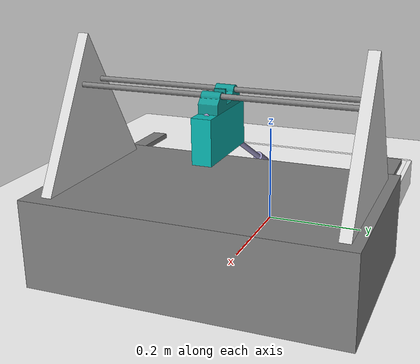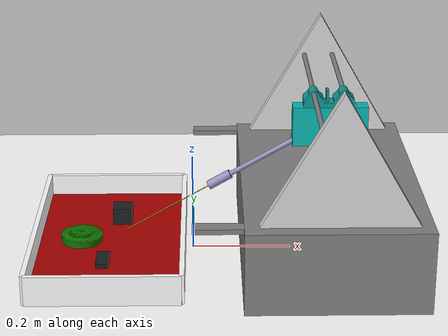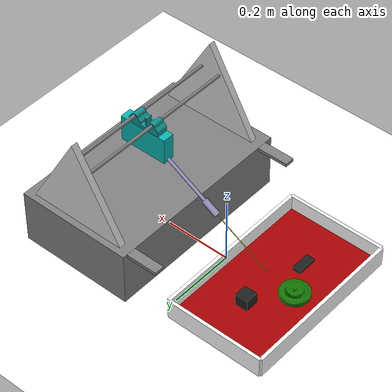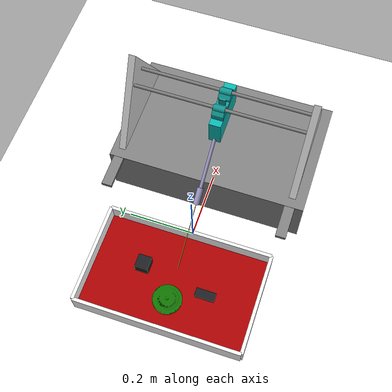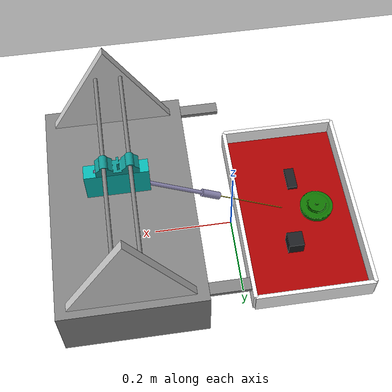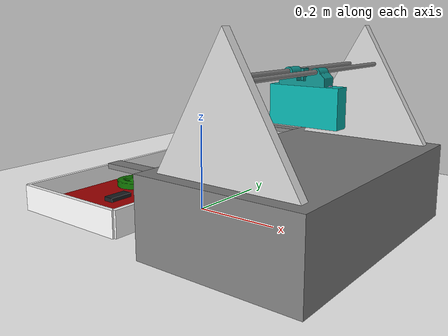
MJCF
<mujoco>
	<asset>
    	<mesh file="Support1.stl"/>
		<mesh file="Support2.stl"/>
		<mesh file="Stand.stl"/>
		<mesh file="Probe_new.stl"/>
		<mesh file="Housing_new.stl"/>
		<mesh file="Support_rod1.stl"/>
		<mesh file="Support_rod2.stl"/>
		<mesh file="Probe_holder1.stl"/>
		<mesh file="Probe_holder2.stl"/>
		<mesh file="Mine.stl"/>
		<mesh file="Probe_main_new.stl"/>
		<texture type="skybox" builtin="gradient" rgb1="1 1 1" rgb2=".6 .8 1" width="256" height="256"/>
        <texture name="texplane" type="2d" builtin="checker" rgb1=".2 .3 .4" rgb2=".1 0.15 0.2"
            width="100" height="100"/>
        <material name='MatPlane' reflectance='0.5' texture="texplane" texrepeat="1 1" texuniform="true"/>
	</asset>

	<option gravity= "0 0 -9.8"/>
	<worldbody>

        <light diffuse="0.8 0.8 0.8" pos="0 0 4" dir="0 0 -1"/>
		<geom type="plane" size="1 1 0.1" rgba="1 1 1 1"/>

		<body pos="0 0 0.25">
			<geom type="mesh" size="0.01" mesh="Stand"/>
			<body pos="0.1 -0.25 -0.09">
				<geom type="box" pos= "0 -0.01 0" size="0.10 0.015 0.005"/>
			</body>
			<body pos="0.1 0.25 -0.09">
				<geom type="box" pos= "0 0.01 0" size="0.10 0.015 0.005"/>
				<body pos="-0.1 -0.25 0.09">
					<joint name="test_bed_slider" pos="0.15 -0.26 -0.05" type="slide" axis="-1 0 0" damping="1" limited="true" range="0 0.13"/>
			<body pos="0 0 0">
				<geom type="mesh"  mesh="Support1" rgba="0.839 0.839 0.839 1"/>
				<body pos="0 0 0">
					<geom type="mesh" mesh="Support_rod1"/>
				</body>
			</body>
			<body pos="0 0 0">
				<geom type="mesh" mesh="Support2" rgba="0.839 0.839 0.839 1"/>
				<body pos="0 0 0">
					<geom type="mesh" mesh="Support_rod2"/>
				<body pos="0 0 0" euler="0 0 0">
					<inertial pos="0 0 0" mass="10"/>
					<joint name="axis_movement_j" pos="0.24 0 0.086" type="slide" axis="0 -1 0" damping="1" limited="true" range="-0.15 0.15"/>
					<geom type="mesh" mesh="Probe_holder1" rgba="0.055 0.58 0.565 1"/>
						<body pos="0 0 0">
						<geom type="mesh" mesh="Probe_holder2" rgba="0.031 0.71 0.69 1"/>
						<body pos="0 0 0">
							<geom type="mesh" mesh="Probe_main_new" rgba="0.588 0.569 0.741 1"/>
							<body pos="0 0 0">
								<geom type="mesh" mesh="Housing_new" rgba="0.588 0.569 0.741 1"/>
							</body>
							<body pos="-0.005 -0.0014 -0.1333" euler="0 60 0">
								<joint name="LinearActuator_j" damping="10" stiffness="100" pos="0 0 0" type="slide" axis="0 0 -1" limited="true" range="-0.1 0.1"/>
								<geom type="cylinder" size="0.001 0.15" rgba="0.918 0.922 0.169 1"/>

								<body pos="0 0 -0.15">
									<geom type="cylinder" size="0.0003 0.002" rgba="0 0 1 1"/>
									<site name ="tip" size="0.001" pos="0 0 0" rgba="1 1 1 1"/>

							</body>
							</body>
							</body>
						</body>
					</body>
				</body>
			</body>

		</body>
		</body>
		</body>
		<body pos="-0.17 0 0.01">
			<geom type="box" size="0.15 0.25 0.005" rgba="0.651 0 0 1"/>
			<body>
				<geom type="box" pos = "0 -0.25 0" size="0.15 0.005 0.05" rgba="1 1 1 1" />
			</body>
			<body>
				<geom type="box" pos = "0 0.25 0" size="0.15 0.005 0.05" rgba="1 1 1 1" />
			</body>
			<body>
				<geom type="box" pos = "-0.15 0 0" euler="0 0 90" size="0.25 0.005 0.05" rgba="1 1 1 1" />
			</body>
			<body>
				<geom type="box" pos = "0.15 0 0" euler="0 0 90" size="0.25 0.005 0.05" rgba="1 1 1 1" />
			</body>
		</body>
		<body pos="-0.06 0 0.275">
			<geom type="mesh" mesh="Mine" rgba="0.055 0.439 0 1"/>
		</body>

		<body pos="-0.15 0.1 0.03">
			<geom type="box" size="0.02 0.02 0.02" rgba="0.11 0.118 0.129 1"/>
		</body>

		<body pos="-0.18 -0.1 0.02">
			<geom type="box" size="0.013 0.03 0.005" rgba="0.11 0.118 0.129 1"/>

		</body>

	</worldbody>
	<actuator>
		<velocity name="probe_velocity" joint="LinearActuator_j" kv="10"/>
		<velocity name="y_axis_velocity" joint="axis_movement_j" kv="5000"/>
		<velocity name="z_axis_velocity" joint="test_bed_slider" kv="5000"/>

	</actuator>
		<sensor>
			<force site="tip" name="probing_force"/>
		</sensor>

</mujoco>
